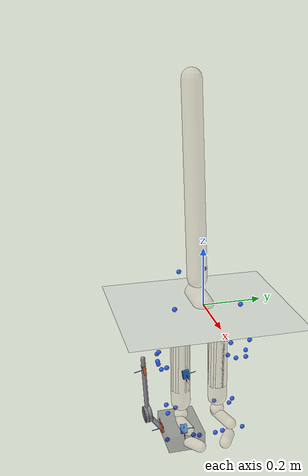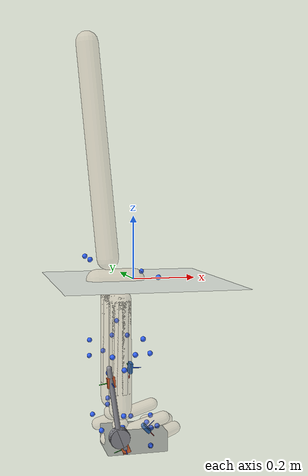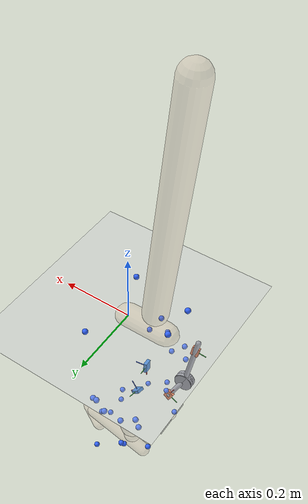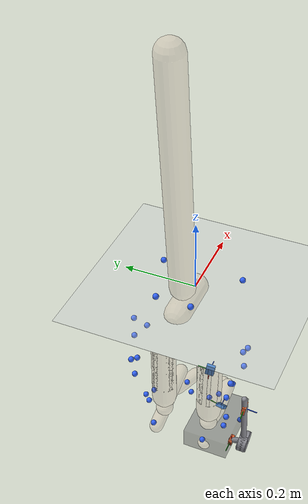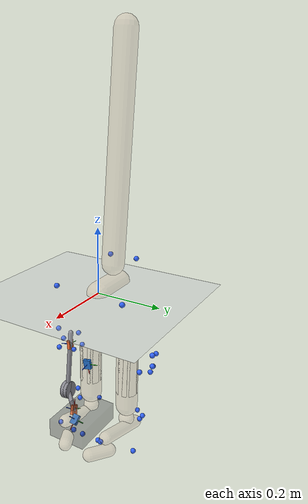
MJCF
<mujoco model="AB14">
  <compiler angle="radian" autolimits="true"/>
  <option timestep="0.005" gravity="0 0 -9.81"><flag contact="disable"/></option>
  <visual><global offwidth="1600" offheight="1200"/>
    <headlight ambient="0.55 0.55 0.55" diffuse="0.6 0.6 0.6"/></visual>
  <default><joint limited="false" damping="0"/><geom contype="0" conaffinity="0"/></default>
  <asset>
    <texture name="grid" type="2d" builtin="checker" rgb1="0.75 0.77 0.8" rgb2="0.85 0.87 0.9" width="512" height="512"/>
    <material name="grid" texture="grid" texrepeat="2 2" texuniform="true"/>
    <material name="skin" rgba="0.85 0.72 0.62 0.28"/>
  </asset>
  <worldbody>
    <light pos="0 0 4" dir="0 0 -1"/>
    <geom name="floor" type="plane" size="0 0 0.05" material="grid"/>
    <body name="pelvis" pos="0 0 0" quat="1 0 0 0">
      <joint name="pelvis_tx" type="slide" axis="1 0 0"/>
      <joint name="pelvis_ty" type="slide" axis="0 0 1"/>
      <joint name="pelvis_tz" type="slide" axis="0 -1 0"/>
      <joint name="pelvis_tilt" type="hinge" axis="0 -1 0"/>
      <joint name="pelvis_list" type="hinge" axis="1 0 0"/>
      <joint name="pelvis_rotation" type="hinge" axis="0 0 1"/>
      <inertial pos="-0.057851334 0 0" mass="9.15008" diaginertia="0.091500824 0.091500824 0.091500824"/>
      <geom type="capsule" fromto="0 0 0 -0.11570267 0 0" size="0.035" material="skin" mass="0"/>
      <site name="m_R_ASIS" pos="0.05207173 -0.11190089 0.017452318" size="0.008" rgba="0.2 0.4 1 1" group="2"/>
      <site name="m_L_ASIS" pos="0.053724558 0.11344676 0.01133429" size="0.008" rgba="0.2 0.4 1 1" group="2"/>
      <site name="m_L_PSIS" pos="-0.14741253 0.044029121 0.071787433" size="0.008" rgba="0.2 0.4 1 1" group="2"/>
      <site name="m_R_PSIS" pos="-0.14651177 -0.048314107 0.06990471" size="0.008" rgba="0.2 0.4 1 1" group="2"/>
      <body name="femur_r" pos="-0.057851334 -0.068325125 -0.054087315" quat="1 0 0 0">
        <joint name="hip_flexion_r" type="hinge" axis="0 -1 0"/>
        <joint name="hip_adduction_r" type="hinge" axis="1 0 0"/>
        <joint name="hip_rotation_r" type="hinge" axis="0 0 1"/>
        <inertial pos="0 0 -0.14398115" mass="7.22668" diaginertia="0.072266771 0.072266771 0.072266771"/>
        <geom type="capsule" fromto="0 0 0 0 0 -0.28796231" size="0.035" material="skin" mass="0"/>
        <site name="m_R_Thigh_Upper" pos="0.051710605 -0.087664113 -0.10614545" size="0.008" rgba="0.2 0.4 1 1" group="2"/>
        <site name="m_R_Thigh_Front" pos="0.078138368 -0.066662428 -0.155147" size="0.008" rgba="0.2 0.4 1 1" group="2"/>
        <site name="m_R_Thigh_Rear" pos="0.028132021 -0.087244078 -0.15282657" size="0.008" rgba="0.2 0.4 1 1" group="2"/>
        <site name="m_R_Knee_Lat" pos="-0.00018401753 -0.053259247 -0.34638537" size="0.008" rgba="0.2 0.4 1 1" group="2"/>
        <body name="tibia_r" pos="0 0 0" quat="1 0 0 0">
<geom name="gt_shank_axis_x" type="capsule" size="0.0012" fromto="0.03430 0.01120 -0.21470 0.03151 0.01576 -0.24929" rgba="1 0.1 0.1 1" contype="0" conaffinity="0" mass="0"/>
<geom name="gt_shank_axis_y" type="capsule" size="0.0012" fromto="0.03430 0.01120 -0.21470 0.03121 0.04573 -0.20990" rgba="0.1 0.8 0.1 1" contype="0" conaffinity="0" mass="0"/>
<geom name="gt_shank_axis_z" type="capsule" size="0.0012" fromto="0.03430 0.01120 -0.21470 0.06905 0.01463 -0.21705" rgba="0.1 0.3 1 1" contype="0" conaffinity="0" mass="0"/>
<geom name="exo_shank_axis_x" type="capsule" size="0.0012" fromto="-0.05214 -0.12141 -0.22275 -0.05632 -0.12744 -0.18853" rgba="1 0.1 0.1 1" contype="0" conaffinity="0" mass="0"/>
<geom name="exo_shank_axis_y" type="capsule" size="0.0012" fromto="-0.05214 -0.12141 -0.22275 -0.08679 -0.12319 -0.22731" rgba="0.1 0.8 0.1 1" contype="0" conaffinity="0" mass="0"/>
<geom name="exo_shank_axis_z" type="capsule" size="0.0012" fromto="-0.05214 -0.12141 -0.22275 -0.04961 -0.15584 -0.22851" rgba="0.1 0.3 1 1" contype="0" conaffinity="0" mass="0"/>
<geom name="encoder_shank" type="cylinder" size="0.03 0.012" fromto="-0.02585 -0.12912 -0.39043 -0.02795 -0.10528 -0.38857" rgba="0.55 0.55 0.58 1" contype="0" conaffinity="0" mass="0"/>
<geom name="strut_shank" type="capsule" size="0.008" fromto="-0.02690 -0.11720 -0.38950 -0.05845 -0.12246 -0.18107" rgba="0.55 0.55 0.58 1" contype="0" conaffinity="0" mass="0"/>
          <joint name="knee_r_translation1" type="slide" axis="1 0 0"/>
          <joint name="knee_r_translation2" type="slide" axis="0 0 1"/>
          <joint name="knee_angle_r" type="hinge" axis="0 -1 0"/>
          <inertial pos="0 0 -0.16911481" mass="2.88052" diaginertia="0.028805239 0.028805239 0.028805239"/>
          <geom type="capsule" fromto="0 0 0 0 0 -0.33822961" size="0.035" material="skin" mass="0"/>
          <site name="m_R_Shank_Upper" pos="-0.038773323 -0.074984686 -0.15942267" size="0.008" rgba="0.2 0.4 1 1" group="2"/>
          <site name="m_R_Shank_Front" pos="-0.00095615085 -0.067740862 -0.20231826" size="0.008" rgba="0.2 0.4 1 1" group="2"/>
          <site name="m_R_Shank_Rear" pos="-0.049569803 -0.068567043 -0.20662182" size="0.008" rgba="0.2 0.4 1 1" group="2"/>
          <site name="m_R_Ankle_Lat" pos="-0.0024757829 -0.047517442 -0.38333732" size="0.008" rgba="0.2 0.4 1 1" group="2"/>
          <site name="gt_shank_imu" type="box" size="0.016 0.012 0.005" pos="0.0343 0.0112 -0.2147" quat="0.67818201 0.014376297 0.73032911 0.080510079" rgba="0.16 0.47 0.84 1" group="1"/>
          <site name="exo_shank_imu" type="box" size="0.016 0.012 0.005" pos="-0.052137 -0.121411 -0.222752" quat="-0.40769259 -0.52341739 0.55525929 -0.50150584" rgba="0.92 0.41 0.20 1" group="1"/>
          <body name="talus_r" pos="0 0 -0.38949848" quat="1 0 0 0">
            <joint name="ankle_angle_r" type="hinge" axis="-0.10501355 -0.97912632 -0.17402245"/>
            <inertial pos="0 0 0" mass="0.0776945" diaginertia="0.0007769451 0.0007769451 0.0007769451"/>
            <geom type="sphere" size="0.025" material="skin" mass="0"/>
            <body name="calcn_r" pos="-0.044176374 -0.0071740185 -0.037998747" quat="1 0 0 0">
<geom name="gt_foot_axis_x" type="capsule" size="0.0012" fromto="0.12430 -0.00200 0.02340 0.14933 -0.00424 -0.00096" rgba="1 0.1 0.1 1" contype="0" conaffinity="0" mass="0"/>
<geom name="gt_foot_axis_y" type="capsule" size="0.0012" fromto="0.12430 -0.00200 0.02340 0.12963 0.03251 0.02571" rgba="0.1 0.8 0.1 1" contype="0" conaffinity="0" mass="0"/>
<geom name="gt_foot_axis_z" type="capsule" size="0.0012" fromto="0.12430 -0.00200 0.02340 0.14818 -0.00736 0.04843" rgba="0.1 0.3 1 1" contype="0" conaffinity="0" mass="0"/>
<geom name="exo_foot_axis_x" type="capsule" size="0.0012" fromto="0.04488 -0.06501 -0.01170 0.03128 -0.06985 0.02019" rgba="1 0.1 0.1 1" contype="0" conaffinity="0" mass="0"/>
<geom name="exo_foot_axis_y" type="capsule" size="0.0012" fromto="0.04488 -0.06501 -0.01170 0.01268 -0.06088 -0.02480" rgba="0.1 0.8 0.1 1" contype="0" conaffinity="0" mass="0"/>
<geom name="exo_foot_axis_z" type="capsule" size="0.0012" fromto="0.04488 -0.06501 -0.01170 0.04293 -0.09942 -0.01776" rgba="0.1 0.3 1 1" contype="0" conaffinity="0" mass="0"/>
<geom name="encoder_foot" type="cylinder" size="0.03 0.012" fromto="0.01723 -0.12192 0.03662 0.01737 -0.09808 0.03938" rgba="0.55 0.55 0.58 1" contype="0" conaffinity="0" mass="0"/>
<geom name="strut_foot" type="capsule" size="0.008" fromto="0.01730 -0.11000 0.03800 0.04488 -0.06501 -0.01170" rgba="0.55 0.55 0.58 1" contype="0" conaffinity="0" mass="0"/>
<geom name="shoe" type="box" pos="0.08369 -0.00295 -0.00080" size="0.09237 0.06452 0.03000" rgba="0.15 0.15 0.18 0.35" contype="0" conaffinity="0" mass="0"/>
              <joint name="subtalar_angle_r" type="hinge" axis="0.78717961 0.12094949 0.60474746"/>
              <inertial pos="0.090070965 0 0.02702129" mass="0.971181" diaginertia="0.0097118137 0.0097118137 0.0097118137"/>
              <geom type="capsule" fromto="0 0 0 0.18014193 0 0.054042579" size="0.02" material="skin" mass="0"/>
              <site name="m_R_Heel" pos="-0.015673242 0.0013754282 0.026449134" size="0.008" rgba="0.2 0.4 1 1" group="2"/>
              <site name="m_R_Toe_Lat" pos="0.12381018 -0.061787036 -0.010797787" size="0.008" rgba="0.2 0.4 1 1" group="2"/>
              <site name="m_R_Toe_Med" pos="0.1535598 0.047244725 0.0072181812" size="0.008" rgba="0.2 0.4 1 1" group="2"/>
              <site name="m_R_Toe_Tip" pos="0.16606283 0.022150298 0.020803538" size="0.008" rgba="0.2 0.4 1 1" group="2"/>
              <site name="gt_foot_imu" type="box" size="0.016 0.012 0.005" pos="0.1243 -0.002 0.0234" quat="0.92415892 0.059270147 0.37281445 -0.058538262" rgba="0.16 0.47 0.84 1" group="1"/>
              <site name="exo_foot_imu" type="box" size="0.016 0.012 0.005" pos="0.044877 -0.065007 -0.0117" quat="-0.37291731 -0.40828917 0.64796613 -0.52380582" rgba="0.92 0.41 0.20 1" group="1"/>
              <body name="toes_r" pos="0.16104689 -0.00097276643 -0.0018014193" quat="1 0 0 0">
                <joint name="mtp_angle_r" type="hinge" axis="-0.5809544 -0.81393611 0"/>
                <inertial pos="0.031164554 0.015762419 0.0054042579" mass="0.168286" diaginertia="0.0016828631 0.0016828631 0.0016828631"/>
                <geom type="capsule" fromto="0 0 0 0.062329108 0.031524838 0.010808516" size="0.02" material="skin" mass="0"/>
              </body>
            </body>
          </body>
        </body>
      </body>
      <body name="femur_l" pos="-0.057851334 0.068325125 -0.054087315" quat="1 0 0 0">
        <joint name="hip_flexion_l" type="hinge" axis="0 -1 0"/>
        <joint name="hip_adduction_l" type="hinge" axis="-1 0 0"/>
        <joint name="hip_rotation_l" type="hinge" axis="0 0 -1"/>
        <inertial pos="0 0 -0.14398115" mass="7.22668" diaginertia="0.072266771 0.072266771 0.072266771"/>
        <geom type="capsule" fromto="0 0 0 0 0 -0.28796231" size="0.035" material="skin" mass="0"/>
        <site name="m_L_Thigh_Upper" pos="0.039484577 0.10616092 -0.10804107" size="0.008" rgba="0.2 0.4 1 1" group="2"/>
        <site name="m_L_Thigh_Front" pos="0.071054924 0.08222778 -0.15492638" size="0.008" rgba="0.2 0.4 1 1" group="2"/>
        <site name="m_L_Thigh_Rear" pos="0.021755389 0.098385062 -0.15544382" size="0.008" rgba="0.2 0.4 1 1" group="2"/>
        <site name="m_L_Knee_Lat" pos="-0.0012221092 0.057895817 -0.35924393" size="0.008" rgba="0.2 0.4 1 1" group="2"/>
        <body name="tibia_l" pos="0 0 0" quat="1 0 0 0">
          <joint name="knee_l_translation1" type="slide" axis="1 0 0"/>
          <joint name="knee_l_translation2" type="slide" axis="0 0 1"/>
          <joint name="knee_angle_l" type="hinge" axis="0 -1 0"/>
          <inertial pos="0 0 -0.16911481" mass="2.88052" diaginertia="0.028805239 0.028805239 0.028805239"/>
          <geom type="capsule" fromto="0 0 0 0 0 -0.33822961" size="0.035" material="skin" mass="0"/>
          <site name="m_L_Shank_Upper" pos="-0.059883594 0.069236049 -0.16221937" size="0.008" rgba="0.2 0.4 1 1" group="2"/>
          <site name="m_L_Shank_Front" pos="-0.013999471 0.074539669 -0.20188041" size="0.008" rgba="0.2 0.4 1 1" group="2"/>
          <site name="m_L_Shank_Rear" pos="-0.062880522 0.058999633 -0.2121337" size="0.008" rgba="0.2 0.4 1 1" group="2"/>
          <site name="m_L_Ankle_Lat" pos="-0.0041439538 0.047035306 -0.37727876" size="0.008" rgba="0.2 0.4 1 1" group="2"/>
          <body name="talus_l" pos="0 0 -0.38949848" quat="1 0 0 0">
            <joint name="ankle_angle_l" type="hinge" axis="0.10501355 -0.97912632 0.17402245"/>
            <inertial pos="0 0 0" mass="0.0776945" diaginertia="0.0007769451 0.0007769451 0.0007769451"/>
            <geom type="sphere" size="0.025" material="skin" mass="0"/>
            <body name="calcn_l" pos="-0.044176374 0.0071740185 -0.037998747" quat="1 0 0 0">
              <joint name="subtalar_angle_l" type="hinge" axis="-0.78717961 0.12094949 -0.60474746"/>
              <inertial pos="0.090070965 0 0.02702129" mass="0.971181" diaginertia="0.0097118137 0.0097118137 0.0097118137"/>
              <geom type="capsule" fromto="0 0 0 0.18014193 0 0.054042579" size="0.02" material="skin" mass="0"/>
              <site name="m_L_Heel" pos="-0.0176336 -0.00022121553 0.032514396" size="0.008" rgba="0.2 0.4 1 1" group="2"/>
              <site name="m_L_Toe_Lat" pos="0.1246534 0.064290711 -0.0030158574" size="0.008" rgba="0.2 0.4 1 1" group="2"/>
              <site name="m_L_Toe_Med" pos="0.15277184 -0.045541107 0.0078305873" size="0.008" rgba="0.2 0.4 1 1" group="2"/>
              <site name="m_L_Toe_Tip" pos="0.17082643 -0.024669744 0.023598606" size="0.008" rgba="0.2 0.4 1 1" group="2"/>
              <body name="toes_l" pos="0.16104689 0.00097276643 -0.0018014193" quat="1 0 0 0">
                <joint name="mtp_angle_l" type="hinge" axis="0.5809544 -0.81393611 0"/>
                <inertial pos="0.031164554 -0.015762419 0.0054042579" mass="0.168286" diaginertia="0.0016828631 0.0016828631 0.0016828631"/>
                <geom type="capsule" fromto="0 0 0 0.062329108 -0.031524838 0.010808516" size="0.02" material="skin" mass="0"/>
              </body>
            </body>
          </body>
        </body>
      </body>
      <body name="torso" pos="-0.082399283 0 0.066688595" quat="1 0 0 0">
        <joint name="lumbar_extension" type="hinge" axis="0 -1 0"/>
        <joint name="lumbar_bending" type="hinge" axis="1 0 0"/>
        <joint name="lumbar_rotation" type="hinge" axis="0 0 1"/>
        <inertial pos="-0.03105903 0 0.33129632" mass="26.6" diaginertia="0.26599959 0.26599959 0.26599959"/>
        <geom type="capsule" fromto="0 0 0 -0.062118061 0 0.66259265" size="0.035" material="skin" mass="0"/>
      </body>
    </body>
  </worldbody>
  <sensor>
<accelerometer name="gt_foot_imu_acc" site="gt_foot_imu"/>
<gyro name="gt_foot_imu_gyr" site="gt_foot_imu"/>
<accelerometer name="exo_foot_imu_acc" site="exo_foot_imu"/>
<gyro name="exo_foot_imu_gyr" site="exo_foot_imu"/>
<accelerometer name="gt_shank_imu_acc" site="gt_shank_imu"/>
<gyro name="gt_shank_imu_gyr" site="gt_shank_imu"/>
<accelerometer name="exo_shank_imu_acc" site="exo_shank_imu"/>
<gyro name="exo_shank_imu_gyr" site="exo_shank_imu"/>
</sensor>
</mujoco>
